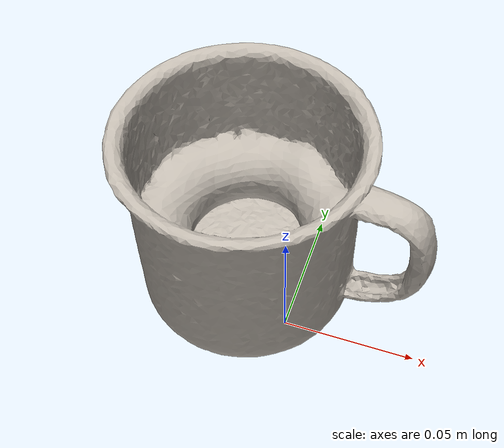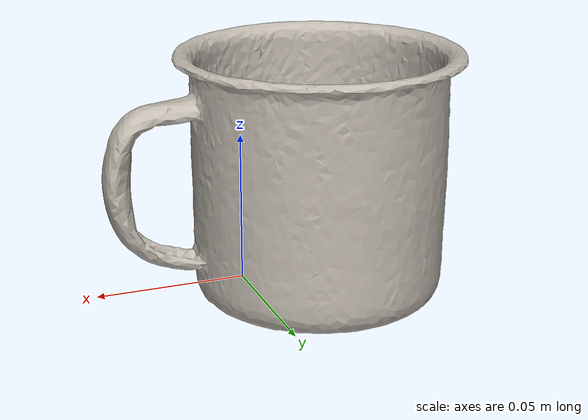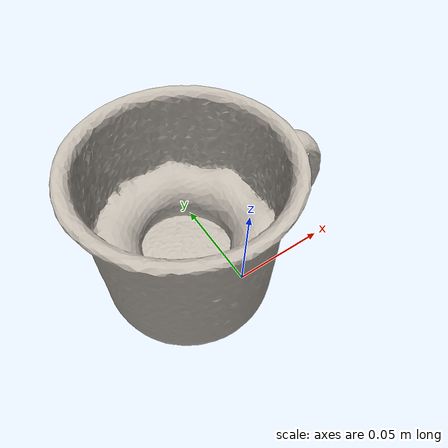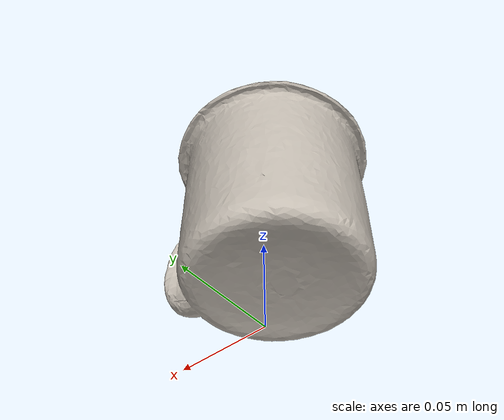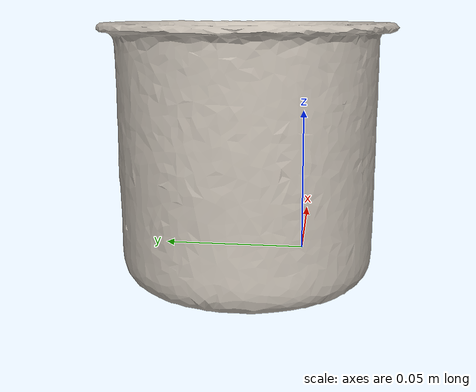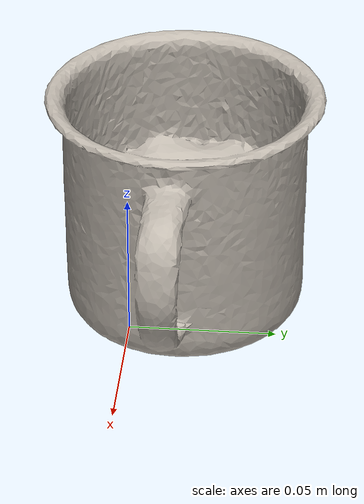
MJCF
<mujoco model="bowl">
  <compiler angle="radian" meshdir="assets" texturedir="assets"/>
    <default>
        <default class="ycb_col">
            <geom contype="1" conaffinity="1" group="3" rgba=".4 .5 .6 1"/>
        </default>
        <default class="ycb_viz">
            <geom contype="0" conaffinity="0" type="mesh" mass="0"/>
        </default>
    </default>

  <asset>
    <texture type="2d" name="bowl_tex" file="texture_map.png"/>
    <material name="bowl_mat" texture="bowl_tex" specular="0.5" shininess="0.5"/>
    <mesh file="textured.obj" name="bowl"/>
    <mesh file="textured_collision_0.obj" name="bowl_collision_0"/>
    <mesh file="textured_collision_1.obj" name="bowl_collision_1"/>
    <mesh file="textured_collision_2.obj" name="bowl_collision_2"/>
    <mesh file="textured_collision_3.obj" name="bowl_collision_3"/>
    <mesh file="textured_collision_4.obj" name="bowl_collision_4"/>
    <mesh file="textured_collision_5.obj" name="bowl_collision_5"/>
    <mesh file="textured_collision_6.obj" name="bowl_collision_6"/>
    <mesh file="textured_collision_7.obj" name="bowl_collision_7"/>
    <mesh file="textured_collision_8.obj" name="bowl_collision_8"/>
    <mesh file="textured_collision_9.obj" name="bowl_collision_9"/>
    <mesh file="textured_collision_10.obj" name="bowl_collision_10"/>
    <mesh file="textured_collision_11.obj" name="bowl_collision_11"/>
    <mesh file="textured_collision_12.obj" name="bowl_collision_12"/>
    <mesh file="textured_collision_13.obj" name="bowl_collision_13"/>
    <mesh file="textured_collision_14.obj" name="bowl_collision_14"/>
    <mesh file="textured_collision_15.obj" name="bowl_collision_15"/>
    <mesh file="textured_collision_16.obj" name="bowl_collision_16"/>
    <mesh file="textured_collision_17.obj" name="bowl_collision_17"/>
    <mesh file="textured_collision_18.obj" name="bowl_collision_18"/>
    <mesh file="textured_collision_19.obj" name="bowl_collision_19"/>
    <mesh file="textured_collision_20.obj" name="bowl_collision_20"/>
    <mesh file="textured_collision_21.obj" name="bowl_collision_21"/>
    <mesh file="textured_collision_22.obj" name="bowl_collision_22"/>
    <mesh file="textured_collision_23.obj" name="bowl_collision_23"/>
    <mesh file="textured_collision_24.obj" name="bowl_collision_24"/>
    <mesh file="textured_collision_25.obj" name="bowl_collision_25"/>
    <mesh file="textured_collision_26.obj" name="bowl_collision_26"/>
    <mesh file="textured_collision_27.obj" name="bowl_collision_27"/>
    <mesh file="textured_collision_28.obj" name="bowl_collision_28"/>
    <mesh file="textured_collision_29.obj" name="bowl_collision_29"/>
    <mesh file="textured_collision_30.obj" name="bowl_collision_30"/>
    <mesh file="textured_collision_31.obj" name="bowl_collision_31"/>
    <mesh file="textured_collision_32.obj" name="bowl_collision_32"/>
    <mesh file="textured_collision_33.obj" name="bowl_collision_33"/>
    <mesh file="textured_collision_34.obj" name="bowl_collision_34"/>
    <mesh file="textured_collision_35.obj" name="bowl_collision_35"/>
    <mesh file="textured_collision_36.obj" name="bowl_collision_36"/>
    <mesh file="textured_collision_37.obj" name="bowl_collision_37"/>
    <mesh file="textured_collision_38.obj" name="bowl_collision_38"/>
    <mesh file="textured_collision_39.obj" name="bowl_collision_39"/>
    <mesh file="textured_collision_40.obj" name="bowl_collision_40"/>
    <mesh file="textured_collision_41.obj" name="bowl_collision_41"/>
    <mesh file="textured_collision_42.obj" name="bowl_collision_42"/>
    <mesh file="textured_collision_43.obj" name="bowl_collision_43"/>
    <mesh file="textured_collision_44.obj" name="bowl_collision_44"/>
    <mesh file="textured_collision_45.obj" name="bowl_collision_45"/>
    <mesh file="textured_collision_46.obj" name="bowl_collision_46"/>
    <mesh file="textured_collision_47.obj" name="bowl_collision_47"/>
    <mesh file="textured_collision_48.obj" name="bowl_collision_48"/>
    <mesh file="textured_collision_49.obj" name="bowl_collision_49"/>
    <mesh file="textured_collision_50.obj" name="bowl_collision_50"/>
    <mesh file="textured_collision_51.obj" name="bowl_collision_51"/>
    <mesh file="textured_collision_52.obj" name="bowl_collision_52"/>
    <mesh file="textured_collision_53.obj" name="bowl_collision_53"/>
    <mesh file="textured_collision_54.obj" name="bowl_collision_54"/>
    <mesh file="textured_collision_55.obj" name="bowl_collision_55"/>
    <mesh file="textured_collision_56.obj" name="bowl_collision_56"/>
    <mesh file="textured_collision_57.obj" name="bowl_collision_57"/>
    <mesh file="textured_collision_58.obj" name="bowl_collision_58"/>
    <mesh file="textured_collision_59.obj" name="bowl_collision_59"/>
    <mesh file="textured_collision_60.obj" name="bowl_collision_60"/>
    <mesh file="textured_collision_61.obj" name="bowl_collision_61"/>
    <mesh file="textured_collision_62.obj" name="bowl_collision_62"/>
    <mesh file="textured_collision_63.obj" name="bowl_collision_63"/>
    <mesh file="textured_collision_64.obj" name="bowl_collision_64"/>
    <mesh file="textured_collision_65.obj" name="bowl_collision_65"/>
    <mesh file="textured_collision_66.obj" name="bowl_collision_66"/>
    <mesh file="textured_collision_67.obj" name="bowl_collision_67"/>
    <mesh file="textured_collision_68.obj" name="bowl_collision_68"/>
    <mesh file="textured_collision_69.obj" name="bowl_collision_69"/>
    <mesh file="textured_collision_70.obj" name="bowl_collision_70"/>
    <mesh file="textured_collision_71.obj" name="bowl_collision_71"/>
    <mesh file="textured_collision_72.obj" name="bowl_collision_72"/>
    <mesh file="textured_collision_73.obj" name="bowl_collision_73"/>
    <mesh file="textured_collision_74.obj" name="bowl_collision_74"/>
    <mesh file="textured_collision_75.obj" name="bowl_collision_75"/>
    <mesh file="textured_collision_76.obj" name="bowl_collision_76"/>
    <mesh file="textured_collision_77.obj" name="bowl_collision_77"/>
    <mesh file="textured_collision_78.obj" name="bowl_collision_78"/>
    <mesh file="textured_collision_79.obj" name="bowl_collision_79"/>
  </asset>
  <worldbody>
      <geom class="ycb_viz" material="bowl_mat" mesh="bowl"/>
      <geom class="ycb_col" mesh="bowl_collision_0" conaffinity="1" condim="4" friction="0.1 0.1 0.1" mass="0.0010354428905953725" rgba="1 1 1 1" solimp="0.99 0.99 0.01" solref=".001 0.1" type="mesh" group="3"/>
      <geom class="ycb_col" mesh="bowl_collision_1" conaffinity="1" condim="4" friction="0.1 0.1 0.1" mass="0.0017477411157947452" rgba="1 1 1 1" solimp="0.99 0.99 0.01" solref=".001 0.1" type="mesh" group="3"/>
      <geom class="ycb_col" mesh="bowl_collision_2" conaffinity="1" condim="4" friction="0.1 0.1 0.1" mass="0.002170790326150948" rgba="1 1 1 1" solimp="0.99 0.99 0.01" solref=".001 0.1" type="mesh" group="3"/>
      <geom class="ycb_col" mesh="bowl_collision_3" conaffinity="1" condim="4" friction="0.1 0.1 0.1" mass="0.0018706523722649175" rgba="1 1 1 1" solimp="0.99 0.99 0.01" solref=".001 0.1" type="mesh" group="3"/>
      <geom class="ycb_col" mesh="bowl_collision_4" conaffinity="1" condim="4" friction="0.1 0.1 0.1" mass="0.0034353644775691446" rgba="1 1 1 1" solimp="0.99 0.99 0.01" solref=".001 0.1" type="mesh" group="3"/>
      <geom class="ycb_col" mesh="bowl_collision_5" conaffinity="1" condim="4" friction="0.1 0.1 0.1" mass="0.001656320234078004" rgba="1 1 1 1" solimp="0.99 0.99 0.01" solref=".001 0.1" type="mesh" group="3"/>
      <geom class="ycb_col" mesh="bowl_collision_6" conaffinity="1" condim="4" friction="0.1 0.1 0.1" mass="0.0008936877739192094" rgba="1 1 1 1" solimp="0.99 0.99 0.01" solref=".001 0.1" type="mesh" group="3"/>
      <geom class="ycb_col" mesh="bowl_collision_7" conaffinity="1" condim="4" friction="0.1 0.1 0.1" mass="0.0009905181474883084" rgba="1 1 1 1" solimp="0.99 0.99 0.01" solref=".001 0.1" type="mesh" group="3"/>
      <geom class="ycb_col" mesh="bowl_collision_8" conaffinity="1" condim="4" friction="0.1 0.1 0.1" mass="0.00197106527891295" rgba="1 1 1 1" solimp="0.99 0.99 0.01" solref=".001 0.1" type="mesh" group="3"/>
      <geom class="ycb_col" mesh="bowl_collision_9" conaffinity="1" condim="4" friction="0.1 0.1 0.1" mass="0.0017683785978162701" rgba="1 1 1 1" solimp="0.99 0.99 0.01" solref=".001 0.1" type="mesh" group="3"/>
      <geom class="ycb_col" mesh="bowl_collision_10" conaffinity="1" condim="4" friction="0.1 0.1 0.1" mass="0.0017050547932621336" rgba="1 1 1 1" solimp="0.99 0.99 0.01" solref=".001 0.1" type="mesh" group="3"/>
      <geom class="ycb_col" mesh="bowl_collision_11" conaffinity="1" condim="4" friction="0.1 0.1 0.1" mass="0.005074565019650289" rgba="1 1 1 1" solimp="0.99 0.99 0.01" solref=".001 0.1" type="mesh" group="3"/>
      <geom class="ycb_col" mesh="bowl_collision_12" conaffinity="1" condim="4" friction="0.1 0.1 0.1" mass="0.0020325959566090414" rgba="1 1 1 1" solimp="0.99 0.99 0.01" solref=".001 0.1" type="mesh" group="3"/>
      <geom class="ycb_col" mesh="bowl_collision_13" conaffinity="1" condim="4" friction="0.1 0.1 0.1" mass="0.0007805614647056619" rgba="1 1 1 1" solimp="0.99 0.99 0.01" solref=".001 0.1" type="mesh" group="3"/>
      <geom class="ycb_col" mesh="bowl_collision_14" conaffinity="1" condim="4" friction="0.1 0.1 0.1" mass="0.0016429009669824293" rgba="1 1 1 1" solimp="0.99 0.99 0.01" solref=".001 0.1" type="mesh" group="3"/>
      <geom class="ycb_col" mesh="bowl_collision_15" conaffinity="1" condim="4" friction="0.1 0.1 0.1" mass="0.002433852198715681" rgba="1 1 1 1" solimp="0.99 0.99 0.01" solref=".001 0.1" type="mesh" group="3"/>
      <geom class="ycb_col" mesh="bowl_collision_16" conaffinity="1" condim="4" friction="0.1 0.1 0.1" mass="0.0036878200052381364" rgba="1 1 1 1" solimp="0.99 0.99 0.01" solref=".001 0.1" type="mesh" group="3"/>
      <geom class="ycb_col" mesh="bowl_collision_17" conaffinity="1" condim="4" friction="0.1 0.1 0.1" mass="0.003347320295581329" rgba="1 1 1 1" solimp="0.99 0.99 0.01" solref=".001 0.1" type="mesh" group="3"/>
      <geom class="ycb_col" mesh="bowl_collision_18" conaffinity="1" condim="4" friction="0.1 0.1 0.1" mass="0.0020000770112015656" rgba="1 1 1 1" solimp="0.99 0.99 0.01" solref=".001 0.1" type="mesh" group="3"/>
      <geom class="ycb_col" mesh="bowl_collision_19" conaffinity="1" condim="4" friction="0.1 0.1 0.1" mass="0.0016656164052760705" rgba="1 1 1 1" solimp="0.99 0.99 0.01" solref=".001 0.1" type="mesh" group="3"/>
      <geom class="ycb_col" mesh="bowl_collision_20" conaffinity="1" condim="4" friction="0.1 0.1 0.1" mass="0.0013940886664256236" rgba="1 1 1 1" solimp="0.99 0.99 0.01" solref=".001 0.1" type="mesh" group="3"/>
      <geom class="ycb_col" mesh="bowl_collision_21" conaffinity="1" condim="4" friction="0.1 0.1 0.1" mass="0.002199182264644031" rgba="1 1 1 1" solimp="0.99 0.99 0.01" solref=".001 0.1" type="mesh" group="3"/>
      <geom class="ycb_col" mesh="bowl_collision_22" conaffinity="1" condim="4" friction="0.1 0.1 0.1" mass="0.0012115559551594834" rgba="1 1 1 1" solimp="0.99 0.99 0.01" solref=".001 0.1" type="mesh" group="3"/>
      <geom class="ycb_col" mesh="bowl_collision_23" conaffinity="1" condim="4" friction="0.1 0.1 0.1" mass="0.0014835295604731641" rgba="1 1 1 1" solimp="0.99 0.99 0.01" solref=".001 0.1" type="mesh" group="3"/>
      <geom class="ycb_col" mesh="bowl_collision_24" conaffinity="1" condim="4" friction="0.1 0.1 0.1" mass="0.001509393074781677" rgba="1 1 1 1" solimp="0.99 0.99 0.01" solref=".001 0.1" type="mesh" group="3"/>
      <geom class="ycb_col" mesh="bowl_collision_25" conaffinity="1" condim="4" friction="0.1 0.1 0.1" mass="0.0015029832974897662" rgba="1 1 1 1" solimp="0.99 0.99 0.01" solref=".001 0.1" type="mesh" group="3"/>
      <geom class="ycb_col" mesh="bowl_collision_26" conaffinity="1" condim="4" friction="0.1 0.1 0.1" mass="0.002726622208355183" rgba="1 1 1 1" solimp="0.99 0.99 0.01" solref=".001 0.1" type="mesh" group="3"/>
      <geom class="ycb_col" mesh="bowl_collision_27" conaffinity="1" condim="4" friction="0.1 0.1 0.1" mass="0.002232588964471725" rgba="1 1 1 1" solimp="0.99 0.99 0.01" solref=".001 0.1" type="mesh" group="3"/>
      <geom class="ycb_col" mesh="bowl_collision_28" conaffinity="1" condim="4" friction="0.1 0.1 0.1" mass="0.0013723782782243104" rgba="1 1 1 1" solimp="0.99 0.99 0.01" solref=".001 0.1" type="mesh" group="3"/>
      <geom class="ycb_col" mesh="bowl_collision_29" conaffinity="1" condim="4" friction="0.1 0.1 0.1" mass="0.003097799306459968" rgba="1 1 1 1" solimp="0.99 0.99 0.01" solref=".001 0.1" type="mesh" group="3"/>
      <geom class="ycb_col" mesh="bowl_collision_30" conaffinity="1" condim="4" friction="0.1 0.1 0.1" mass="0.0029634283655724965" rgba="1 1 1 1" solimp="0.99 0.99 0.01" solref=".001 0.1" type="mesh" group="3"/>
      <geom class="ycb_col" mesh="bowl_collision_31" conaffinity="1" condim="4" friction="0.1 0.1 0.1" mass="0.0019519884500249645" rgba="1 1 1 1" solimp="0.99 0.99 0.01" solref=".001 0.1" type="mesh" group="3"/>
      <geom class="ycb_col" mesh="bowl_collision_32" conaffinity="1" condim="4" friction="0.1 0.1 0.1" mass="0.0024751536067934153" rgba="1 1 1 1" solimp="0.99 0.99 0.01" solref=".001 0.1" type="mesh" group="3"/>
      <geom class="ycb_col" mesh="bowl_collision_33" conaffinity="1" condim="4" friction="0.1 0.1 0.1" mass="0.0007173951003401732" rgba="1 1 1 1" solimp="0.99 0.99 0.01" solref=".001 0.1" type="mesh" group="3"/>
      <geom class="ycb_col" mesh="bowl_collision_34" conaffinity="1" condim="4" friction="0.1 0.1 0.1" mass="0.0012065621642254206" rgba="1 1 1 1" solimp="0.99 0.99 0.01" solref=".001 0.1" type="mesh" group="3"/>
      <geom class="ycb_col" mesh="bowl_collision_35" conaffinity="1" condim="4" friction="0.1 0.1 0.1" mass="0.0028670426028765813" rgba="1 1 1 1" solimp="0.99 0.99 0.01" solref=".001 0.1" type="mesh" group="3"/>
      <geom class="ycb_col" mesh="bowl_collision_36" conaffinity="1" condim="4" friction="0.1 0.1 0.1" mass="0.0013355714043546897" rgba="1 1 1 1" solimp="0.99 0.99 0.01" solref=".001 0.1" type="mesh" group="3"/>
      <geom class="ycb_col" mesh="bowl_collision_37" conaffinity="1" condim="4" friction="0.1 0.1 0.1" mass="0.002423771215590799" rgba="1 1 1 1" solimp="0.99 0.99 0.01" solref=".001 0.1" type="mesh" group="3"/>
      <geom class="ycb_col" mesh="bowl_collision_38" conaffinity="1" condim="4" friction="0.1 0.1 0.1" mass="0.0018336142343087873" rgba="1 1 1 1" solimp="0.99 0.99 0.01" solref=".001 0.1" type="mesh" group="3"/>
      <geom class="ycb_col" mesh="bowl_collision_39" conaffinity="1" condim="4" friction="0.1 0.1 0.1" mass="0.0018339733809208658" rgba="1 1 1 1" solimp="0.99 0.99 0.01" solref=".001 0.1" type="mesh" group="3"/>
      <geom class="ycb_col" mesh="bowl_collision_40" conaffinity="1" condim="4" friction="0.1 0.1 0.1" mass="0.0015745821665537891" rgba="1 1 1 1" solimp="0.99 0.99 0.01" solref=".001 0.1" type="mesh" group="3"/>
      <geom class="ycb_col" mesh="bowl_collision_41" conaffinity="1" condim="4" friction="0.1 0.1 0.1" mass="0.0011107840444224526" rgba="1 1 1 1" solimp="0.99 0.99 0.01" solref=".001 0.1" type="mesh" group="3"/>
      <geom class="ycb_col" mesh="bowl_collision_42" conaffinity="1" condim="4" friction="0.1 0.1 0.1" mass="0.0012435072038215818" rgba="1 1 1 1" solimp="0.99 0.99 0.01" solref=".001 0.1" type="mesh" group="3"/>
      <geom class="ycb_col" mesh="bowl_collision_43" conaffinity="1" condim="4" friction="0.1 0.1 0.1" mass="0.002491773990681032" rgba="1 1 1 1" solimp="0.99 0.99 0.01" solref=".001 0.1" type="mesh" group="3"/>
      <geom class="ycb_col" mesh="bowl_collision_44" conaffinity="1" condim="4" friction="0.1 0.1 0.1" mass="0.00028403436918194685" rgba="1 1 1 1" solimp="0.99 0.99 0.01" solref=".001 0.1" type="mesh" group="3"/>
      <geom class="ycb_col" mesh="bowl_collision_45" conaffinity="1" condim="4" friction="0.1 0.1 0.1" mass="0.002300145162322945" rgba="1 1 1 1" solimp="0.99 0.99 0.01" solref=".001 0.1" type="mesh" group="3"/>
      <geom class="ycb_col" mesh="bowl_collision_46" conaffinity="1" condim="4" friction="0.1 0.1 0.1" mass="0.0011788618302851083" rgba="1 1 1 1" solimp="0.99 0.99 0.01" solref=".001 0.1" type="mesh" group="3"/>
      <geom class="ycb_col" mesh="bowl_collision_47" conaffinity="1" condim="4" friction="0.1 0.1 0.1" mass="0.007171590054662389" rgba="1 1 1 1" solimp="0.99 0.99 0.01" solref=".001 0.1" type="mesh" group="3"/>
      <geom class="ycb_col" mesh="bowl_collision_48" conaffinity="1" condim="4" friction="0.1 0.1 0.1" mass="0.0008540776957246028" rgba="1 1 1 1" solimp="0.99 0.99 0.01" solref=".001 0.1" type="mesh" group="3"/>
      <geom class="ycb_col" mesh="bowl_collision_49" conaffinity="1" condim="4" friction="0.1 0.1 0.1" mass="0.0007600101961818249" rgba="1 1 1 1" solimp="0.99 0.99 0.01" solref=".001 0.1" type="mesh" group="3"/>
      <geom class="ycb_col" mesh="bowl_collision_50" conaffinity="1" condim="4" friction="0.1 0.1 0.1" mass="0.0009919864571148057" rgba="1 1 1 1" solimp="0.99 0.99 0.01" solref=".001 0.1" type="mesh" group="3"/>
      <geom class="ycb_col" mesh="bowl_collision_51" conaffinity="1" condim="4" friction="0.1 0.1 0.1" mass="0.0006573162991570658" rgba="1 1 1 1" solimp="0.99 0.99 0.01" solref=".001 0.1" type="mesh" group="3"/>
      <geom class="ycb_col" mesh="bowl_collision_52" conaffinity="1" condim="4" friction="0.1 0.1 0.1" mass="0.0018916233934727893" rgba="1 1 1 1" solimp="0.99 0.99 0.01" solref=".001 0.1" type="mesh" group="3"/>
      <geom class="ycb_col" mesh="bowl_collision_53" conaffinity="1" condim="4" friction="0.1 0.1 0.1" mass="0.0037000490191200796" rgba="1 1 1 1" solimp="0.99 0.99 0.01" solref=".001 0.1" type="mesh" group="3"/>
      <geom class="ycb_col" mesh="bowl_collision_54" conaffinity="1" condim="4" friction="0.1 0.1 0.1" mass="0.0007504080000742438" rgba="1 1 1 1" solimp="0.99 0.99 0.01" solref=".001 0.1" type="mesh" group="3"/>
      <geom class="ycb_col" mesh="bowl_collision_55" conaffinity="1" condim="4" friction="0.1 0.1 0.1" mass="0.000776293312071347" rgba="1 1 1 1" solimp="0.99 0.99 0.01" solref=".001 0.1" type="mesh" group="3"/>
      <geom class="ycb_col" mesh="bowl_collision_56" conaffinity="1" condim="4" friction="0.1 0.1 0.1" mass="0.0019248124679301988" rgba="1 1 1 1" solimp="0.99 0.99 0.01" solref=".001 0.1" type="mesh" group="3"/>
      <geom class="ycb_col" mesh="bowl_collision_57" conaffinity="1" condim="4" friction="0.1 0.1 0.1" mass="0.001944440047156002" rgba="1 1 1 1" solimp="0.99 0.99 0.01" solref=".001 0.1" type="mesh" group="3"/>
      <geom class="ycb_col" mesh="bowl_collision_58" conaffinity="1" condim="4" friction="0.1 0.1 0.1" mass="0.001424614156424759" rgba="1 1 1 1" solimp="0.99 0.99 0.01" solref=".001 0.1" type="mesh" group="3"/>
      <geom class="ycb_col" mesh="bowl_collision_59" conaffinity="1" condim="4" friction="0.1 0.1 0.1" mass="0.002392732669987106" rgba="1 1 1 1" solimp="0.99 0.99 0.01" solref=".001 0.1" type="mesh" group="3"/>
      <geom class="ycb_col" mesh="bowl_collision_60" conaffinity="1" condim="4" friction="0.1 0.1 0.1" mass="0.0011300287785897297" rgba="1 1 1 1" solimp="0.99 0.99 0.01" solref=".001 0.1" type="mesh" group="3"/>
      <geom class="ycb_col" mesh="bowl_collision_61" conaffinity="1" condim="4" friction="0.1 0.1 0.1" mass="0.0020363270340207082" rgba="1 1 1 1" solimp="0.99 0.99 0.01" solref=".001 0.1" type="mesh" group="3"/>
      <geom class="ycb_col" mesh="bowl_collision_62" conaffinity="1" condim="4" friction="0.1 0.1 0.1" mass="0.0013264141023662523" rgba="1 1 1 1" solimp="0.99 0.99 0.01" solref=".001 0.1" type="mesh" group="3"/>
      <geom class="ycb_col" mesh="bowl_collision_63" conaffinity="1" condim="4" friction="0.1 0.1 0.1" mass="0.0011058492541999043" rgba="1 1 1 1" solimp="0.99 0.99 0.01" solref=".001 0.1" type="mesh" group="3"/>
      <geom class="ycb_col" mesh="bowl_collision_64" conaffinity="1" condim="4" friction="0.1 0.1 0.1" mass="0.0013151267121457493" rgba="1 1 1 1" solimp="0.99 0.99 0.01" solref=".001 0.1" type="mesh" group="3"/>
      <geom class="ycb_col" mesh="bowl_collision_65" conaffinity="1" condim="4" friction="0.1 0.1 0.1" mass="0.0021579403694983695" rgba="1 1 1 1" solimp="0.99 0.99 0.01" solref=".001 0.1" type="mesh" group="3"/>
      <geom class="ycb_col" mesh="bowl_collision_66" conaffinity="1" condim="4" friction="0.1 0.1 0.1" mass="0.001686107607566777" rgba="1 1 1 1" solimp="0.99 0.99 0.01" solref=".001 0.1" type="mesh" group="3"/>
      <geom class="ycb_col" mesh="bowl_collision_67" conaffinity="1" condim="4" friction="0.1 0.1 0.1" mass="0.00415830870634427" rgba="1 1 1 1" solimp="0.99 0.99 0.01" solref=".001 0.1" type="mesh" group="3"/>
      <geom class="ycb_col" mesh="bowl_collision_68" conaffinity="1" condim="4" friction="0.1 0.1 0.1" mass="0.0011836191535455002" rgba="1 1 1 1" solimp="0.99 0.99 0.01" solref=".001 0.1" type="mesh" group="3"/>
      <geom class="ycb_col" mesh="bowl_collision_69" conaffinity="1" condim="4" friction="0.1 0.1 0.1" mass="0.0016820701767534317" rgba="1 1 1 1" solimp="0.99 0.99 0.01" solref=".001 0.1" type="mesh" group="3"/>
      <geom class="ycb_col" mesh="bowl_collision_70" conaffinity="1" condim="4" friction="0.1 0.1 0.1" mass="0.0010213154370854337" rgba="1 1 1 1" solimp="0.99 0.99 0.01" solref=".001 0.1" type="mesh" group="3"/>
      <geom class="ycb_col" mesh="bowl_collision_71" conaffinity="1" condim="4" friction="0.1 0.1 0.1" mass="0.0007332930241150333" rgba="1 1 1 1" solimp="0.99 0.99 0.01" solref=".001 0.1" type="mesh" group="3"/>
      <geom class="ycb_col" mesh="bowl_collision_72" conaffinity="1" condim="4" friction="0.1 0.1 0.1" mass="0.0018271730236381085" rgba="1 1 1 1" solimp="0.99 0.99 0.01" solref=".001 0.1" type="mesh" group="3"/>
      <geom class="ycb_col" mesh="bowl_collision_73" conaffinity="1" condim="4" friction="0.1 0.1 0.1" mass="0.0012080750822776973" rgba="1 1 1 1" solimp="0.99 0.99 0.01" solref=".001 0.1" type="mesh" group="3"/>
      <geom class="ycb_col" mesh="bowl_collision_74" conaffinity="1" condim="4" friction="0.1 0.1 0.1" mass="0.0010853908258626318" rgba="1 1 1 1" solimp="0.99 0.99 0.01" solref=".001 0.1" type="mesh" group="3"/>
      <geom class="ycb_col" mesh="bowl_collision_75" conaffinity="1" condim="4" friction="0.1 0.1 0.1" mass="0.0009646441600147755" rgba="1 1 1 1" solimp="0.99 0.99 0.01" solref=".001 0.1" type="mesh" group="3"/>
      <geom class="ycb_col" mesh="bowl_collision_76" conaffinity="1" condim="4" friction="0.1 0.1 0.1" mass="0.0021863522124820844" rgba="1 1 1 1" solimp="0.99 0.99 0.01" solref=".001 0.1" type="mesh" group="3"/>
      <geom class="ycb_col" mesh="bowl_collision_77" conaffinity="1" condim="4" friction="0.1 0.1 0.1" mass="0.0012605320851428103" rgba="1 1 1 1" solimp="0.99 0.99 0.01" solref=".001 0.1" type="mesh" group="3"/>
      <geom class="ycb_col" mesh="bowl_collision_78" conaffinity="1" condim="4" friction="0.1 0.1 0.1" mass="0.0016088718349020143" rgba="1 1 1 1" solimp="0.99 0.99 0.01" solref=".001 0.1" type="mesh" group="3"/>
      <geom class="ycb_col" mesh="bowl_collision_79" conaffinity="1" condim="4" friction="0.1 0.1 0.1" mass="0.0016499704497973076" rgba="1 1 1 1" solimp="0.99 0.99 0.01" solref=".001 0.1" type="mesh" group="3"/>
  </worldbody>
</mujoco>
